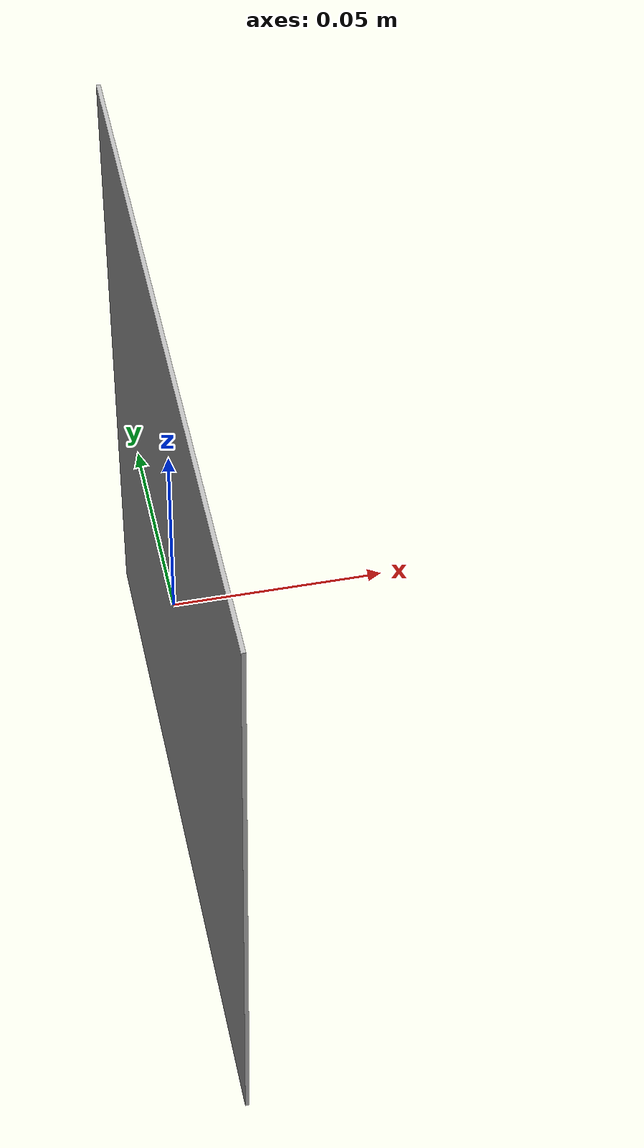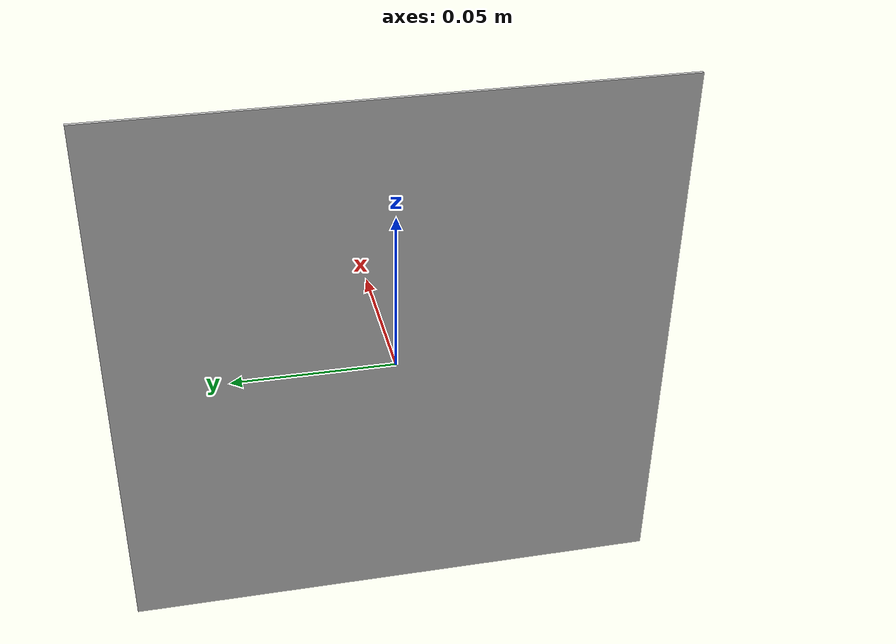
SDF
<?xml version='1.0'?>
<sdf version='1.6'>
  <model name='Apriltag36_11_00000'>
    <link name='main'>
    <pose frame=''>0 0 0 0 0 0</pose>
      <visual name='main_Visual'>
        <geometry>
          <box>
          <size>0.001 0.1725 0.1725</size>
          </box>
        </geometry>
           <material>
          <script>
            <uri>model://Apriltag36_11_00000/materials/scripts</uri>
            <uri>model://Apriltag36_11_00000/materials/textures</uri>
            <name>Apriltag36_11_00000</name>
          </script>
        </material>
      </visual>
     </link>
    <static>1</static>
  </model>
</sdf>
